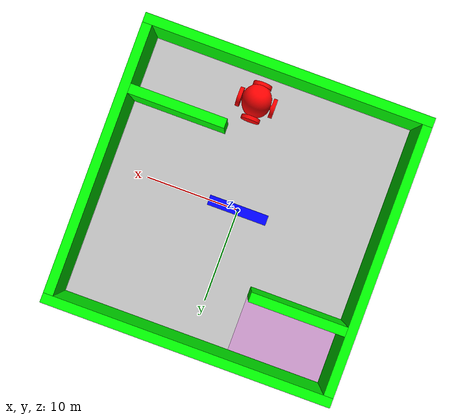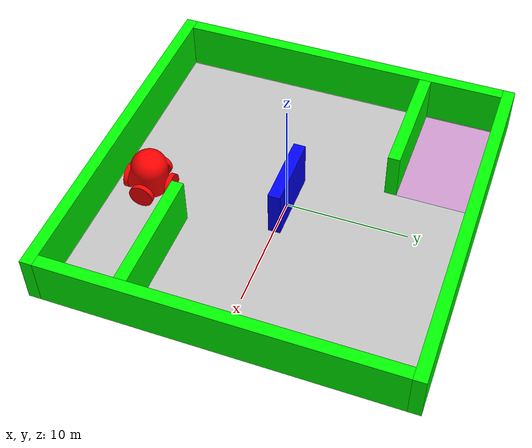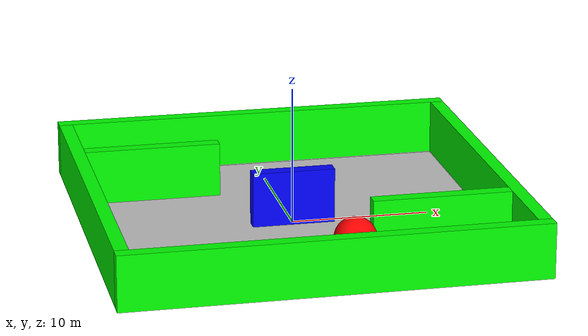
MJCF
<mujoco model="Maze">
    <compiler inertiafromgeom="true" angle="radian"/>

    <visual>
        <scale framelength="0.5" framewidth="0.05"/>
    </visual>

    <option timestep="0.01"/>;

    <asset>
        <mesh name="mesh:agent" file="agent.stl"/>
        <texture name="tex:floor" type="2d" builtin="checker" rgb1="1 1 1" rgb2="0 0 0" width="100" height="100"
                 mark="cross"/>
        <material name="mat:floor" reflectance="0.1" texture="tex:floor" texrepeat="14 14"/>
    </asset>

    <default>
        <joint armature="1" damping="1"/>
        <geom contype="1" condim="3" friction="1 0.1 0.1"/>

        <default class="slider-x">
            <joint type="slide" axis="1 0 0"/>
        </default>

        <default class="slider-y">
            <joint type="slide" axis="0 1 0"/>
        </default>

        <default class="obstacle">
            <geom type="box" size="3 0.5 2" rgba="0 0 1 1"/>
        </default>

        <default class="agent">
            <geom type="mesh" mesh="mesh:agent"/>
        </default>

        <default class="wall-inner">
            <geom type="box" size="5 0.5 2" rgba="0 1 0 1"/>
        </default>

        <default class="wall-x">
            <geom type="box" size="15 0.5 2" quat="1 0 1 0" rgba="0 1 0 1"/>
        </default>

        <default class="wall-y">
            <geom type="box" size="0.5 14 2" quat="1 0 1 0" rgba="0 1 0 1"/>
        </default>
    </default>

    <worldbody>
        <light name="light" directional="true" diffuse="0.8 0.8 0.8" specular="0.4 0.4 0.4" pos="0 -10 20"
               dir="0 1 -1"/>
        <geom name="floor" type="plane" material="mat:floor" size="14 14 1" pos="0 0 0" rgba="0.752 0.752 0.752 1"
              quat="1 0 0 0"/>

        <body name="agent" pos="2 -11 0.01">
            <joint name="slider:agent-x" class="slider-x"/>
            <joint name="slider:agent-y" class="slider-y"/>
            <geom name="agent" rgba="1 0 0 1" class="agent" mass="1"/>
        </body>

        <body name="obstacle" pos="0 0 2">
            <joint name="slider:obstacle" class="slider-x"/>
            <geom name="obstacle" class="obstacle" mass="1"/>
        </body>

        <body name="goal" pos="-9 11 0.005">
            <site type="box" size="5 3 0.01" rgba="128 0 128 0.2"/>
        </body>

        <body name="wall:inner0" pos="-9 7.5 2">
            <geom name="wall:inner0" class="wall-inner"/>
        </body>

        <body name="wall:inner1" pos="9 -7.5 2">
            <geom name="wall:inner1" class="wall-inner"/>
        </body>

        <body name="wall:south" pos="0 -14.5 2" quat="1 0 1 0">
            <geom name="wall:south" class="wall-x"/>
        </body>

        <body name="wall:north" pos="0 14.5 2" quat="1 0 1 0">
            <geom name="wall:north" class="wall-x"/>
        </body>

        <body name="wall:west" pos="-14.5 0 2" quat="1 0 1 0">
            <geom name="wall:west" class="wall-y"/>
        </body>

        <body name="wall:east" pos="14.5 0 2" quat="1 0 1 0">
            <geom name="wall:east" class="wall-y"/>
        </body>
    </worldbody>

    <actuator>
        <velocity name="slider:obstacle" joint="slider:obstacle"/>
        <velocity name="slider:agent-x" joint="slider:agent-x"/>
        <velocity name="slider:agent-y" joint="slider:agent-y"/>
    </actuator>
</mujoco>
